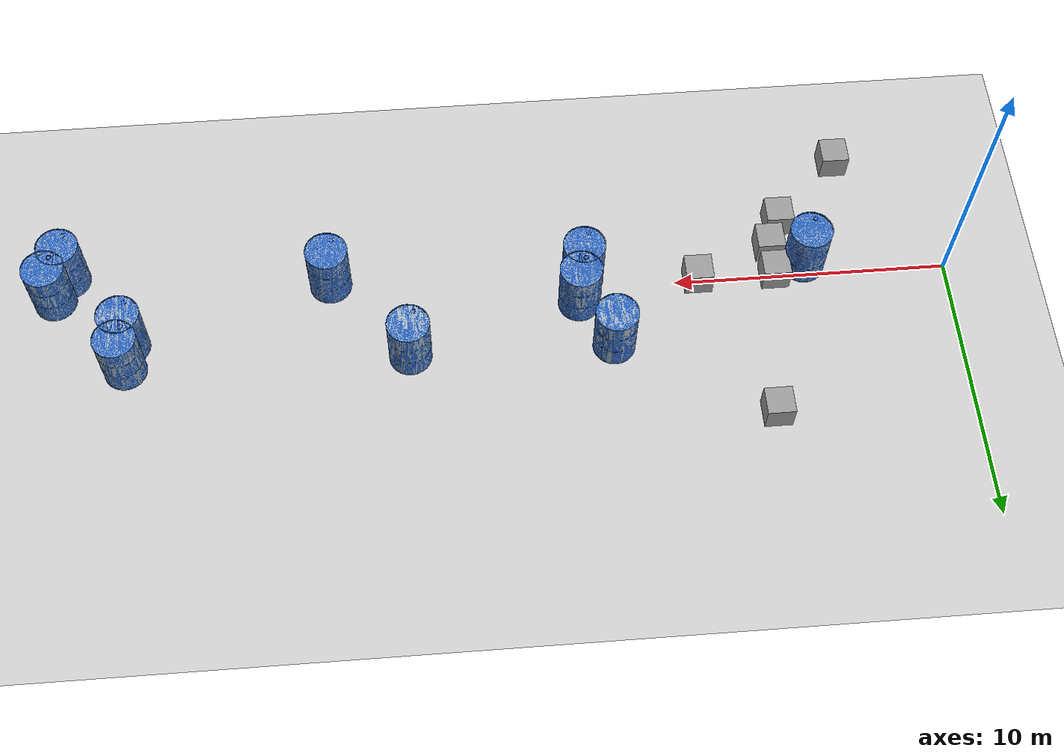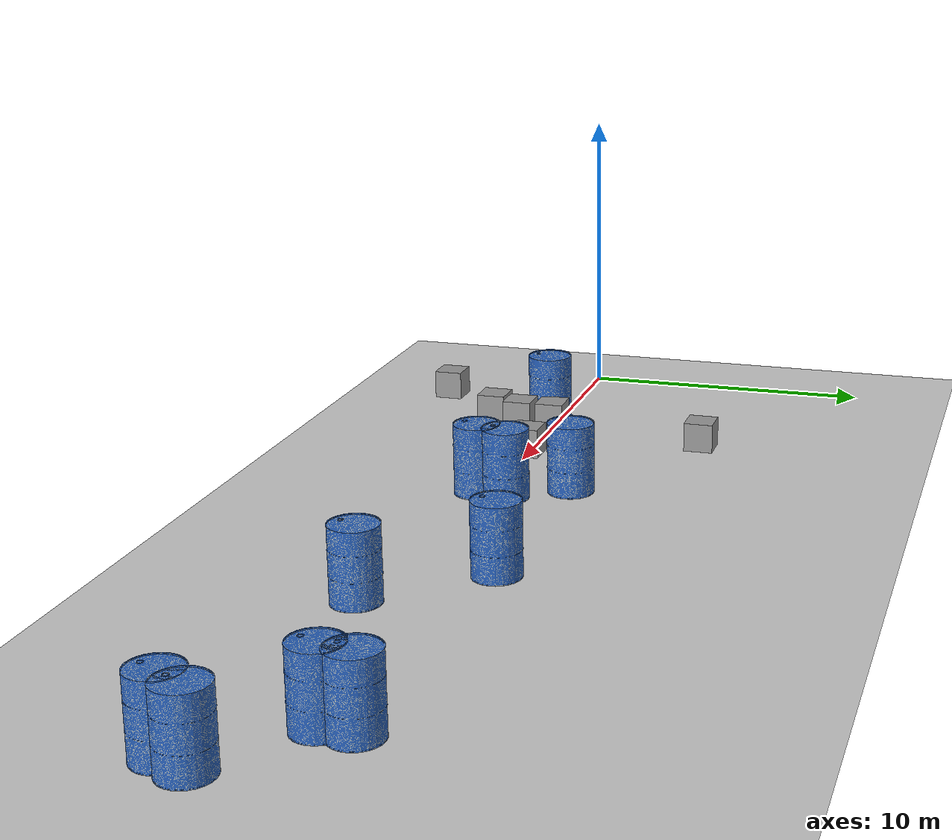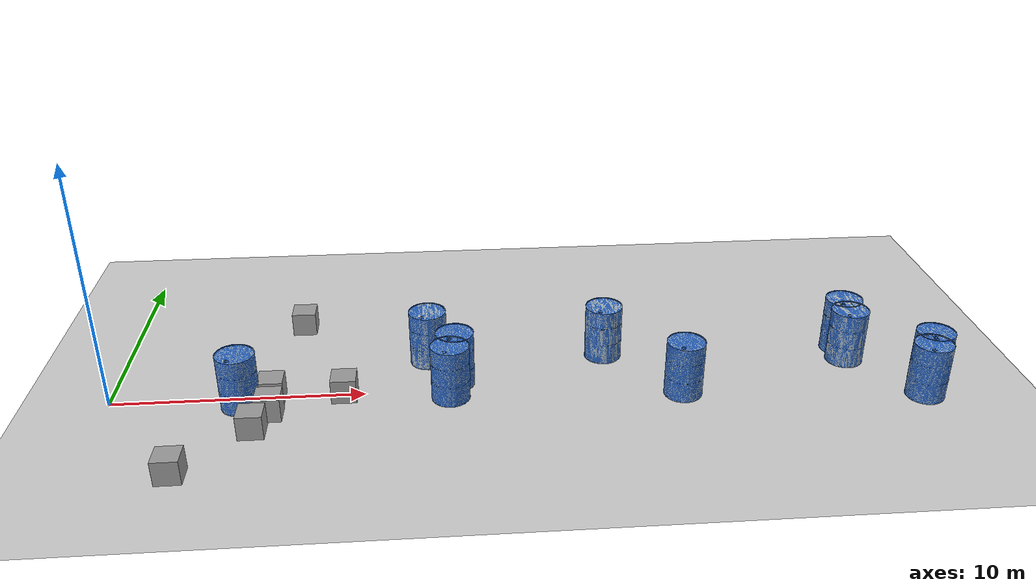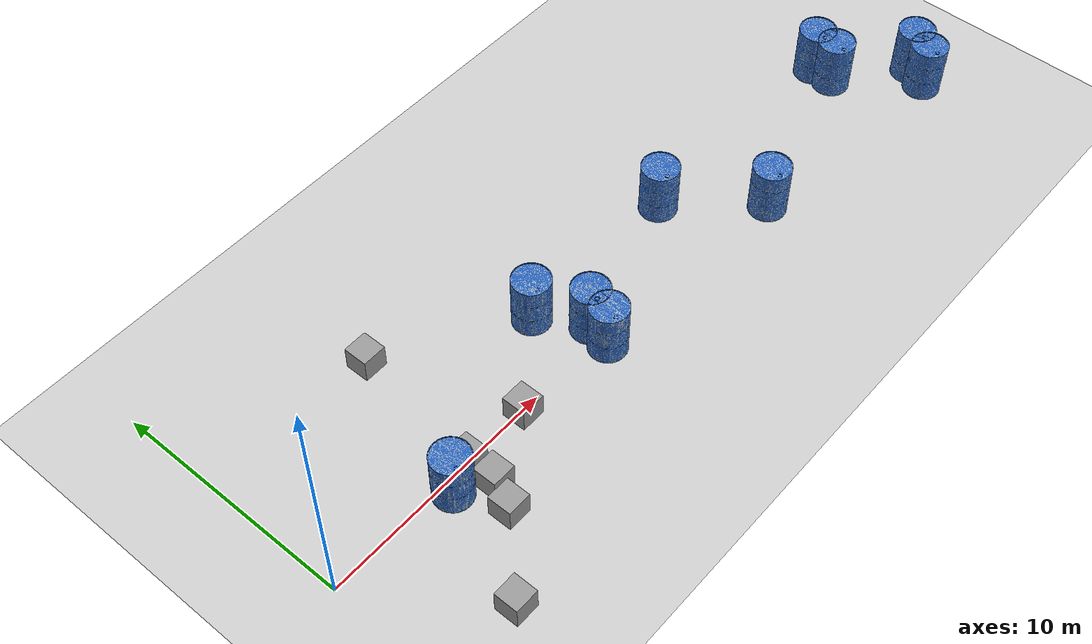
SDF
<sdf version="1.7">
 <world name="default">
  <light name="sun" type="directional">
   <pose>0 0 10 0 -0 0</pose>
   <diffuse>0.9 1 1 1</diffuse>
   <specular>1 1 1 1</specular>
   <attenuation>
    <range>1000</range>
    <constant>1</constant>
    <linear>0.01</linear>
    <quadratic>0.001</quadratic>
   </attenuation>
   <direction>-0.5 0.1 -0.9</direction>
   <spot><inner_angle>0</inner_angle><outer_angle>0</outer_angle><falloff>0</falloff></spot>
  </light>
  <gravity>0 0 -9.8</gravity>
  <magnetic_field>6e-06 2.3e-05 -4.2e-05</magnetic_field>
  <atmosphere type="adiabatic"/>
  <physics type="ode">
   <max_step_size>0.001</max_step_size>
   <real_time_factor>1</real_time_factor>
   <real_time_update_rate>1000</real_time_update_rate>
  </physics>
  <scene><ambient>0.3 0.3 0.3 1</ambient><background>0.1 0.1 0.1 1</background><shadows>1</shadows></scene>
  <spherical_coordinates>
   <surface_model>EARTH_WGS84</surface_model>
   <latitude_deg>0</latitude_deg>
   <longitude_deg>0</longitude_deg>
   <elevation>0</elevation>
   <heading_deg>0</heading_deg>
  </spherical_coordinates>
  <model name="custom_track_1">
   <static>1</static>
   <link name="link">
    <collision name="collision">
     <geometry><plane><normal>0 0 1</normal><size>1250 1062.5</size></plane></geometry>
     <surface><friction><ode><mu>100</mu><mu2>50</mu2></ode></friction></surface>
    </collision>
    <visual name="visual">
     <cast_shadows>0</cast_shadows>
     <geometry><plane><normal>0 0 1</normal><size>80 68</size></plane></geometry>
     <material>
      <script>
       <uri>model://custom_track_1/materials/scripts</uri>
       <uri>model://custom_track_1/materials/textures/</uri>
       <name>CustomTrack1/Image</name>
      </script>
     </material>
    </visual>
   </link>
   <pose>22 -26 0 0 0 -1.62</pose>
  </model>
  <model name="barrel">
   <static>1</static>
   <link name="link">
    <collision name="collision">
     <geometry><mesh><uri>model://barrel/meshes/barrel.dae</uri><scale>2.6 2.6 2.6</scale></mesh></geometry>
    </collision>
    <visual name="visual">
     <material><emissive>0.8 0.8 0.8 1</emissive></material>
     <geometry><mesh><uri>model://barrel/meshes/barrel.dae</uri><scale>2.6 2.6 2.6</scale></mesh></geometry>
    </visual>
   </link>
   <pose>4.40474 -1.22582 0 0 -0 0</pose>
  </model>
  <model name="barrel_0">
   <static>1</static>
   <link name="link">
    <collision name="collision">
     <geometry><mesh><uri>model://barrel/meshes/barrel.dae</uri><scale>2.6 2.6 2.6</scale></mesh></geometry>
    </collision>
    <visual name="visual">
     <material><emissive>0.8 0.8 0.8 1</emissive></material>
     <geometry><mesh><uri>model://barrel/meshes/barrel.dae</uri><scale>2.6 2.6 2.6</scale></mesh></geometry>
    </visual>
   </link>
   <pose>11.7386 1.66232 0 0 -0 0</pose>
  </model>
  <model name="barrel_1">
   <static>1</static>
   <link name="link">
    <collision name="collision">
     <geometry><mesh><uri>model://barrel/meshes/barrel.dae</uri><scale>2.6 2.6 2.6</scale></mesh></geometry>
    </collision>
    <visual name="visual">
     <material><emissive>0.8 0.8 0.8 1</emissive></material>
     <geometry><mesh><uri>model://barrel/meshes/barrel.dae</uri><scale>2.6 2.6 2.6</scale></mesh></geometry>
    </visual>
   </link>
   <pose>12.6016 -1.23253 0 0 -0 0</pose>
  </model>
  <model name="barrel_2">
   <static>1</static>
   <link name="link">
    <collision name="collision">
     <geometry><mesh><uri>model://barrel/meshes/barrel.dae</uri><scale>2.6 2.6 2.6</scale></mesh></geometry>
    </collision>
    <visual name="visual">
     <material><emissive>0.8 0.8 0.8 1</emissive></material>
     <geometry><mesh><uri>model://barrel/meshes/barrel.dae</uri><scale>2.6 2.6 2.6</scale></mesh></geometry>
    </visual>
   </link>
   <pose>12.8144 -0.207234 0 0 -0 0</pose>
  </model>
  <model name="barrel_3">
   <static>1</static>
   <link name="link">
    <collision name="collision">
     <geometry><mesh><uri>model://barrel/meshes/barrel.dae</uri><scale>2.6 2.6 2.6</scale></mesh></geometry>
    </collision>
    <visual name="visual">
     <material><emissive>0.8 0.8 0.8 1</emissive></material>
     <geometry><mesh><uri>model://barrel/meshes/barrel.dae</uri><scale>2.6 2.6 2.6</scale></mesh></geometry>
    </visual>
   </link>
   <pose>19.0526 1.55435 0 0 -0 0</pose>
  </model>
  <model name="barrel_4">
   <static>1</static>
   <link name="link">
    <collision name="collision">
     <geometry><mesh><uri>model://barrel/meshes/barrel.dae</uri><scale>2.6 2.6 2.6</scale></mesh></geometry>
    </collision>
    <visual name="visual">
     <material><emissive>0.8 0.8 0.8 1</emissive></material>
     <geometry><mesh><uri>model://barrel/meshes/barrel.dae</uri><scale>2.6 2.6 2.6</scale></mesh></geometry>
    </visual>
   </link>
   <pose>21.828 -1.64703 0 0 -0 0</pose>
  </model>
  <model name="barrel_5">
   <static>1</static>
   <link name="link">
    <collision name="collision">
     <geometry><mesh><uri>model://barrel/meshes/barrel.dae</uri><scale>2.6 2.6 2.6</scale></mesh></geometry>
    </collision>
    <visual name="visual">
     <material><emissive>0.8 0.8 0.8 1</emissive></material>
     <geometry><mesh><uri>model://barrel/meshes/barrel.dae</uri><scale>2.6 2.6 2.6</scale></mesh></geometry>
    </visual>
   </link>
   <pose>29.2145 1.39874 0 0 -0 0</pose>
  </model>
  <model name="barrel_6">
   <static>1</static>
   <link name="link">
    <collision name="collision">
     <geometry><mesh><uri>model://barrel/meshes/barrel.dae</uri><scale>2.6 2.6 2.6</scale></mesh></geometry>
    </collision>
    <visual name="visual">
     <material><emissive>0.8 0.8 0.8 1</emissive></material>
     <geometry><mesh><uri>model://barrel/meshes/barrel.dae</uri><scale>2.6 2.6 2.6</scale></mesh></geometry>
    </visual>
   </link>
   <pose>29.1315 0.420802 0 0 -0 0</pose>
  </model>
  <model name="barrel_7">
   <static>1</static>
   <link name="link">
    <collision name="collision">
     <geometry><mesh><uri>model://barrel/meshes/barrel.dae</uri><scale>2.6 2.6 2.6</scale></mesh></geometry>
    </collision>
    <visual name="visual">
     <material><emissive>0.8 0.8 0.8 1</emissive></material>
     <geometry><mesh><uri>model://barrel/meshes/barrel.dae</uri><scale>2.6 2.6 2.6</scale></mesh></geometry>
    </visual>
   </link>
   <pose>31.3981 -2.55571 0 0 -0 0</pose>
  </model>
  <model name="barrel_8">
   <static>1</static>
   <link name="link">
    <collision name="collision">
     <geometry><mesh><uri>model://barrel/meshes/barrel.dae</uri><scale>2.6 2.6 2.6</scale></mesh></geometry>
    </collision>
    <visual name="visual">
     <material><emissive>0.8 0.8 0.8 1</emissive></material>
     <geometry><mesh><uri>model://barrel/meshes/barrel.dae</uri><scale>2.6 2.6 2.6</scale></mesh></geometry>
    </visual>
   </link>
   <pose>31.8589 -1.65989 0 0 -0 0</pose>
  </model>
  <model name="unit_box">
   <pose>5.87482 -2.3525 0.5 -0 -0 -0</pose>
   <link name="link">
    <inertial>
     <mass>1</mass>
     <inertia>
      <ixx>0.166667</ixx>
      <ixy>0</ixy>
      <ixz>0</ixz>
      <iyy>0.166667</iyy>
      <iyz>0</iyz>
      <izz>0.166667</izz>
     </inertia>
    </inertial>
    <collision name="collision"><geometry><box><size>1 1 1</size></box></geometry></collision>
    <visual name="visual">
     <geometry><box><size>1 1 1</size></box></geometry>
     <material>
      <script><name>Gazebo/Grey</name><uri>file://media/materials/scripts/gazebo.material</uri></script>
     </material>
    </visual>
   </link>
  </model>
  <model name="unit_box_0">
   <pose>6.37885 -1.22303 0.5 0 -0 0</pose>
   <link name="link">
    <inertial>
     <mass>1</mass>
     <inertia>
      <ixx>0.166667</ixx>
      <ixy>0</ixy>
      <ixz>0</ixz>
      <iyy>0.166667</iyy>
      <iyz>0</iyz>
      <izz>0.166667</izz>
     </inertia>
    </inertial>
    <collision name="collision"><geometry><box><size>1 1 1</size></box></geometry></collision>
    <visual name="visual">
     <geometry><box><size>1 1 1</size></box></geometry>
     <material>
      <script><name>Gazebo/Grey</name><uri>file://media/materials/scripts/gazebo.material</uri></script>
     </material>
    </visual>
   </link>
  </model>
  <model name="unit_box_1">
   <pose>6.34277 -0.040479 0.5 -0 -0 -0</pose>
   <link name="link">
    <inertial>
     <mass>1</mass>
     <inertia>
      <ixx>0.166667</ixx>
      <ixy>0</ixy>
      <ixz>0</ixz>
      <iyy>0.166667</iyy>
      <iyz>0</iyz>
      <izz>0.166667</izz>
     </inertia>
    </inertial>
    <collision name="collision"><geometry><box><size>1 1 1</size></box></geometry></collision>
    <visual name="visual">
     <geometry><box><size>1 1 1</size></box></geometry>
     <material>
      <script><name>Gazebo/Grey</name><uri>file://media/materials/scripts/gazebo.material</uri></script>
     </material>
    </visual>
   </link>
  </model>
  <model name="unit_box_2">
   <pose>9.17469 -0.068564 0.476531 0.005436 1.6e-05 -0.002987</pose>
   <link name="link">
    <inertial>
     <mass>1</mass>
     <inertia>
      <ixx>0.166667</ixx>
      <ixy>0</ixy>
      <ixz>0</ixz>
      <iyy>0.166667</iyy>
      <iyz>0</iyz>
      <izz>0.166667</izz>
     </inertia>
    </inertial>
    <collision name="collision"><geometry><box><size>1 1 1</size></box></geometry></collision>
    <visual name="visual">
     <geometry><box><size>1 1 1</size></box></geometry>
     <material>
      <script><name>Gazebo/Grey</name><uri>file://media/materials/scripts/gazebo.material</uri></script>
     </material>
    </visual>
   </link>
  </model>
  <model name="unit_box_3">
   <pose>3.3798 -4.87309 0.475966 0.005536 1.7e-05 -1.57395</pose>
   <link name="link">
    <inertial>
     <mass>1</mass>
     <inertia>
      <ixx>0.166667</ixx>
      <ixy>0</ixy>
      <ixz>0</ixz>
      <iyy>0.166667</iyy>
      <iyz>0</iyz>
      <izz>0.166667</izz>
     </inertia>
    </inertial>
    <collision name="collision"><geometry><box><size>1 1 1</size></box></geometry></collision>
    <visual name="visual">
     <geometry><box><size>1 1 1</size></box></geometry>
     <material>
      <script><name>Gazebo/Grey</name><uri>file://media/materials/scripts/gazebo.material</uri></script>
     </material>
    </visual>
   </link>
  </model>
  <model name="unit_box_4">
   <pose>7.10117 5.57868 0.483403 7e-06 0.004169 0.001733</pose>
   <link name="link">
    <inertial>
     <mass>1</mass>
     <inertia>
      <ixx>0.166667</ixx>
      <ixy>0</ixy>
      <ixz>0</ixz>
      <iyy>0.166667</iyy>
      <iyz>0</iyz>
      <izz>0.166667</izz>
     </inertia>
    </inertial>
    <collision name="collision"><geometry><box><size>1 1 1</size></box></geometry></collision>
    <visual name="visual">
     <geometry><box><size>1 1 1</size></box></geometry>
     <material>
      <script><name>Gazebo/Grey</name><uri>file://media/materials/scripts/gazebo.material</uri></script>
     </material>
    </visual>
   </link>
  </model>
 </world>
</sdf>
